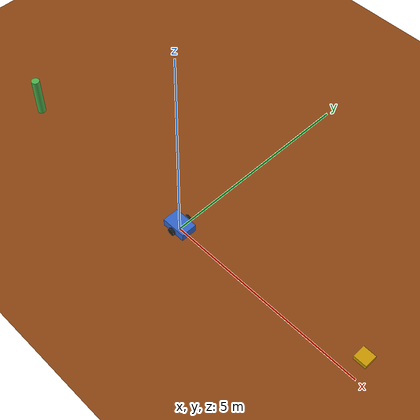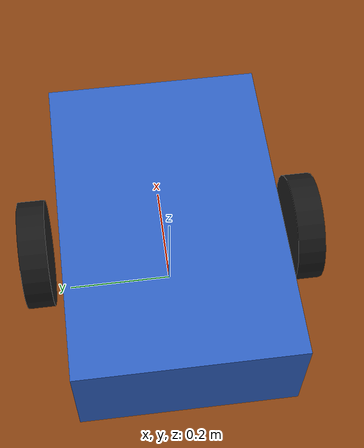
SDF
<?xml version="1.0" ?>
<sdf version="1.7">
  <world name="mars_surrogate">

    <!-- ── Physics ──────────────────────────────────────────────────────────── -->
    <gravity>0 0 -3.72</gravity>
    <physics name="default_physics" default="true" type="ode">
      <max_step_size>0.001</max_step_size>
      <real_time_factor>1.0</real_time_factor>
      <real_time_update_rate>1000</real_time_update_rate>
    </physics>

    <!-- ── Atmosphere (minimal stub — no drag coefficients yet) ─────────────── -->
    <atmosphere type="adiabatic"/>

    <!-- ── World-environment plugin ─────────────────────────────────────────── -->
    <plugin name="world_environment" filename="libworld_environment_plugin.so"/>

    <!-- ── Sun (Mars solar irradiance at ~1.52 AU) ─────────────────────────── -->
    <light name="sun" type="directional">
      <cast_shadows>true</cast_shadows>
      <!-- Direction matches ~45° elevation, south-facing on Jezero Crater lat. -->
      <direction>0.5 0.1 -0.9</direction>
      <!-- Diffuse scaled to ~43 % of Earth 1.0 reference. -->
      <diffuse>0.43 0.43 0.43 1</diffuse>
      <specular>0.1 0.1 0.1 1</specular>
    </light>

    <!-- ── Ground plane ─────────────────────────────────────────────────────── -->
    <model name="ground_plane">
      <static>true</static>
      <link name="link">
        <collision name="collision">
          <geometry>
            <plane>
              <normal>0 0 1</normal>
              <size>500 500</size>
            </plane>
          </geometry>
          <surface>
            <friction>
              <ode>
                <!-- Basalt regolith friction estimate. -->
                <mu>0.7</mu>
                <mu2>0.7</mu2>
              </ode>
            </friction>
          </surface>
        </collision>
        <visual name="visual">
          <geometry>
            <plane>
              <normal>0 0 1</normal>
              <size>500 500</size>
            </plane>
          </geometry>
          <material>
            <ambient>0.55 0.27 0.07 1</ambient>
            <diffuse>0.55 0.27 0.07 1</diffuse>
            <specular>0.01 0.01 0.01 1</specular>
          </material>
        </visual>
      </link>
    </model>

    <!-- ── Land rover (SAKURA-II rover_land class) ──────────────────────────── -->
    <model name="rover_land_0">
      <pose>0 0 0.15 0 0 0</pose>

      <link name="chassis">
        <inertial>
          <mass>20.0</mass>
          <inertia>
            <ixx>0.5</ixx> <ixy>0</ixy> <ixz>0</ixz>
            <iyy>1.0</iyy> <iyz>0</iyz>
            <izz>1.0</izz>
          </inertia>
        </inertial>
        <collision name="chassis_col">
          <geometry><box><size>0.6 0.4 0.2</size></box></geometry>
        </collision>
        <visual name="chassis_vis">
          <geometry><box><size>0.6 0.4 0.2</size></box></geometry>
          <material><ambient>0.2 0.4 0.8 1</ambient><diffuse>0.2 0.4 0.8 1</diffuse></material>
        </visual>
      </link>

      <!-- Left wheel -->
      <link name="left_wheel">
        <pose>0.0 0.25 0 1.5707 0 0</pose>
        <inertial>
          <mass>1.0</mass>
          <inertia><ixx>0.01</ixx><ixy>0</ixy><ixz>0</ixz><iyy>0.01</iyy><iyz>0</iyz><izz>0.01</izz></inertia>
        </inertial>
        <collision name="col">
          <geometry><cylinder><radius>0.1</radius><length>0.05</length></cylinder></geometry>
        </collision>
        <visual name="vis">
          <geometry><cylinder><radius>0.1</radius><length>0.05</length></cylinder></geometry>
          <material><ambient>0.1 0.1 0.1 1</ambient><diffuse>0.1 0.1 0.1 1</diffuse></material>
        </visual>
      </link>

      <!-- Right wheel -->
      <link name="right_wheel">
        <pose>0.0 -0.25 0 1.5707 0 0</pose>
        <inertial>
          <mass>1.0</mass>
          <inertia><ixx>0.01</ixx><ixy>0</ixy><ixz>0</ixz><iyy>0.01</iyy><iyz>0</iyz><izz>0.01</izz></inertia>
        </inertial>
        <collision name="col">
          <geometry><cylinder><radius>0.1</radius><length>0.05</length></cylinder></geometry>
        </collision>
        <visual name="vis">
          <geometry><cylinder><radius>0.1</radius><length>0.05</length></cylinder></geometry>
          <material><ambient>0.1 0.1 0.1 1</ambient><diffuse>0.1 0.1 0.1 1</diffuse></material>
        </visual>
      </link>

      <joint name="left_wheel_joint" type="revolute">
        <parent>chassis</parent>
        <child>left_wheel</child>
        <axis>
          <xyz>0 0 1</xyz>
          <dynamics><damping>0.1</damping></dynamics>
        </axis>
      </joint>

      <joint name="right_wheel_joint" type="revolute">
        <parent>chassis</parent>
        <child>right_wheel</child>
        <axis>
          <xyz>0 0 1</xyz>
          <dynamics><damping>0.1</damping></dynamics>
        </axis>
      </joint>

      <plugin name="rover_drive" filename="librover_drive_plugin.so"/>
    </model>

    <!-- ── UAV (SAKURA-II rover_uav class) ──────────────────────────────────── -->
    <model name="rover_uav_0">
      <pose>5 0 1.0 0 0 0</pose>

      <link name="body">
        <inertial>
          <mass>2.0</mass>
          <inertia>
            <ixx>0.02</ixx><ixy>0</ixy><ixz>0</ixz>
            <iyy>0.02</iyy><iyz>0</iyz>
            <izz>0.04</izz>
          </inertia>
        </inertial>
        <collision name="col">
          <geometry><box><size>0.3 0.3 0.1</size></box></geometry>
        </collision>
        <visual name="vis">
          <geometry><box><size>0.3 0.3 0.1</size></box></geometry>
          <material><ambient>0.8 0.6 0.0 1</ambient><diffuse>0.8 0.6 0.0 1</diffuse></material>
        </visual>
      </link>

      <plugin name="uav_flight" filename="libuav_flight_plugin.so"/>
    </model>

    <!-- ── Cryobot (SAKURA-II rover_cryobot class) ──────────────────────────── -->
    <model name="rover_cryobot_0">
      <pose>-5 0 0.5 0 0 0</pose>

      <link name="body">
        <inertial>
          <mass>5.0</mass>
          <inertia>
            <ixx>0.05</ixx><ixy>0</ixy><ixz>0</ixz>
            <iyy>0.05</iyy><iyz>0</iyz>
            <izz>0.02</izz>
          </inertia>
        </inertial>
        <collision name="col">
          <geometry><cylinder><radius>0.1</radius><length>1.0</length></cylinder></geometry>
        </collision>
        <visual name="vis">
          <geometry><cylinder><radius>0.1</radius><length>1.0</length></cylinder></geometry>
          <material><ambient>0.3 0.7 0.3 1</ambient><diffuse>0.3 0.7 0.3 1</diffuse></material>
        </visual>
      </link>

      <plugin name="cryobot_physics" filename="libcryobot_physics_plugin.so"/>
    </model>

  </world>
</sdf>
